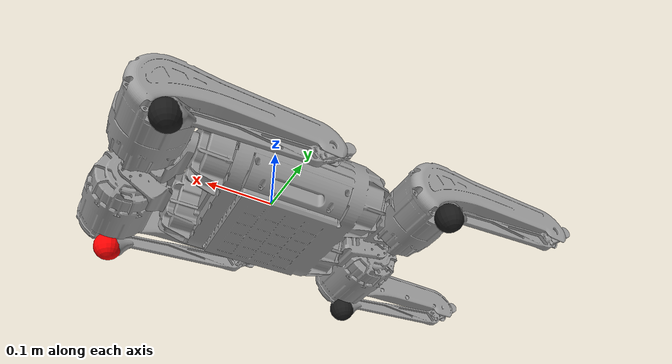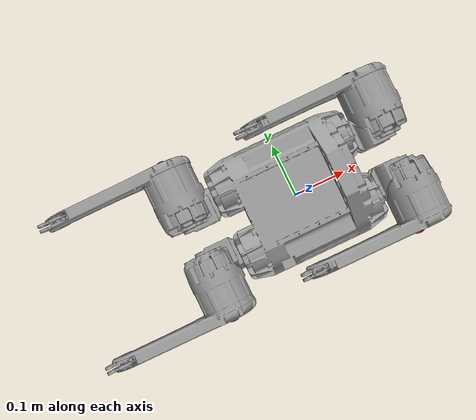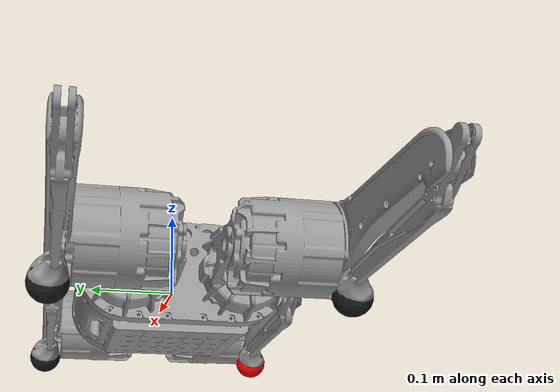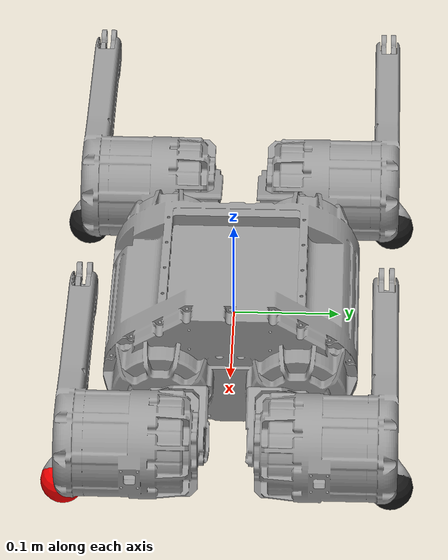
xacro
<?xml version="1.0"?>
<robot name="hb50" xmlns:xacro="http://www.ros.org/wiki/xacro">

  <!-- sim: none | mock | gazebo -->
  <xacro:arg name="sim" default="none" />
  <xacro:if value="${'$(arg sim)' not in ['none', 'mock', 'gazebo']}">
    ${xacro.fatal("sim must be none, mock or gazebo, got '$(arg sim)'")}
  </xacro:if>

  <xacro:include filename="../common/_materials.xacro" />
  <xacro:include filename="_hb50_leg_macro.xacro" />

  <!-- Root link, free-floating base -->
  <link name="body">
    <inertial>
      <mass value="7.812" />
      <inertia ixx="0.034280" ixy="0" ixz="0" iyy="0.053850" iyz="0" izz="0.073590" />
    </inertial>
    <visual>
      <geometry>
        <mesh filename="${hb50_mesh_dir}/hb50_body.stl" scale="0.001 0.001 0.001" />
      </geometry>
      <material name="silver" />
    </visual>
    <collision>
      <origin xyz="0 0 -0.002" />
      <geometry>
        <box size="0.196 0.152 0.124" />
      </geometry>
    </collision>
    <collision>
      <origin xyz="0 -0.064 0" rpy="0 1.570796 0" />
      <geometry>
        <cylinder length="0.282" radius="0.056" />
      </geometry>
    </collision>
    <collision>
      <origin xyz="0 0.064 0" rpy="0 1.570796 0" />
      <geometry>
        <cylinder length="0.282" radius="0.056" />
      </geometry>
    </collision>
    <collision>
      <origin xyz="0.09 0 0.057" />
      <geometry>
        <box size="0.048 0.128 0.048" />
      </geometry>
    </collision>
  </link>

  <!-- ================= FR (leg 0) ================= -->
  <xacro:hb50_leg
    prefix="fr"
    j0_xyz="0.1405 -0.064 0" j0_lower="-1.047198" j0_upper="1.570796"
    l0_mesh="hb50_l0f.stl" l0_mass="0.107" l0_ixx="0.000066961" l0_iyy="0.000070869" l0_izz="0.000062385"
    l0_inertial_xyz="0.021234 0.02611 -0.00004" l0_visual_rpy="3.141593 0 0"
    j1_xyz="0.06 0.0385 0" j1_rpy="0 0 -1.570796" j1_lower="-1.570796" j1_upper="1.570796"
    l1_mass="2.081" l1_inertial_xyz="0.067316 -0.013171 0.002548" l1_ixx="0.006065" l1_iyy="0.003514" l1_izz="0.007592"
    l1_visual_rpy="3.141593 0 0" l1_mesh="hb50_l1r.stl"
    l1_collision2_xyz="0.118 -0.134 0.013" l1_collision2_rpy="0.05 0 0"
    j2_xyz="0.11965 -0.22 0" j2_rpy="2.914700 0 0" j2_lower="-2.705260" j2_upper="0"
    l2_inertial_xyz="0.000982 -0.103425 0.002827" l2_visual_rpy="3.141593 0 0" l2_mesh="hb50_l2r.stl"
    l2_collision1_xyz="0 0.01 0.004" l2_collision1_rpy="1.2 0 0"
    l2_collision2_xyz="0 -0.11 0.006" l2_collision2_rpy="1.699994 0.003670 0.010561"
    jFoot_xyz="0.006 -0.22 0" foot_material="red"
  />

  <!-- ================= FL (leg 1) ================= -->
  <xacro:hb50_leg
    prefix="fl"
    j0_xyz="0.1405 0.064 0" j0_lower="-1.570796" j0_upper="1.047198"
    l0_mesh="hb50_l0f.stl" l0_mass="0.107" l0_ixx="0.000066961" l0_iyy="0.000070869" l0_izz="0.000062385"
    l0_inertial_xyz="0.021234 -0.02611 0.00004"
    j1_xyz="0.06 -0.0385 0" j1_rpy="0 0 1.570796" j1_lower="-1.570796" j1_upper="1.570796"
    l1_mass="2.081" l1_inertial_xyz="0.067316 0.013171 0.002548" l1_ixx="0.006065" l1_iyy="0.003514" l1_izz="0.007592"
    l1_visual_rpy="0 3.141593 0" l1_mesh="hb50_l1l.stl"
    l1_collision2_xyz="0.118 0.134 0.013" l1_collision2_rpy="-0.05 0 0"
    j2_xyz="0.11965 0.22 0" j2_rpy="-2.914700 0 0" j2_lower="0" j2_upper="2.705260"
    l2_inertial_xyz="0.000982 0.103425 0.002827" l2_visual_rpy="0 3.141593 0" l2_mesh="hb50_l2l.stl"
    l2_collision1_xyz="0 -0.01 0.004" l2_collision1_rpy="-1.2 0 0"
    l2_collision2_xyz="0 0.11 0.006" l2_collision2_rpy="-1.699994 0.003670 -0.010561"
    jFoot_xyz="0.006 0.22 0" foot_material="black"
  />

  <!-- ================= RL (leg 2) ================= -->
  <xacro:hb50_leg
    prefix="rl"
    j0_xyz="-0.1405 0.064 0" j0_rpy="0 0 -3.141593" j0_lower="-1.047198" j0_upper="1.570796"
    l0_mesh="hb50_l0r.stl" l0_mass="0.097" l0_ixx="0.000048192" l0_iyy="0.000050964" l0_izz="0.000058424"
    l0_inertial_xyz="0.01945 0.024417 0" l0_visual_rpy="3.141593 0 0"
    j1_xyz="0.06 0.0385 0" j1_rpy="0 0 -1.570796" j1_lower="-3.141593" j1_upper="1.570796"
    l1_mass="2.082" l1_inertial_xyz="0.067294 0.016208 0.002475" l1_ixx="0.005907" l1_iyy="0.003507" l1_izz="0.007445"
    l1_visual_rpy="0 3.141593 0" l1_mesh="hb50_l1l.stl"
    l1_collision2_xyz="0.118 0.134 0.013" l1_collision2_rpy="-0.05 0 0"
    j2_xyz="0.11965 0.22 0" j2_rpy="-2.914700 0 0" j2_lower="0" j2_upper="2.705260"
    l2_inertial_xyz="0.000982 0.103425 0.002827" l2_visual_rpy="0 3.141593 0" l2_mesh="hb50_l2l.stl"
    l2_collision1_xyz="0 -0.01 0.004" l2_collision1_rpy="-1.2 0 0"
    l2_collision2_xyz="0 0.11 0.006" l2_collision2_rpy="-1.699994 0.003670 -0.010561"
    jFoot_xyz="0.006 0.22 0" foot_material="black"
  />

  <!-- ================= RR (leg 3) ================= -->
  <xacro:hb50_leg
    prefix="rr"
    j0_xyz="-0.1405 -0.064 0" j0_rpy="0 0 -3.141593" j0_lower="-1.570796" j0_upper="1.047198"
    l0_mesh="hb50_l0r.stl" l0_mass="0.097" l0_ixx="0.000048192" l0_iyy="0.000050964" l0_izz="0.000058424"
    l0_inertial_xyz="0.01945 -0.024417 0"
    j1_xyz="0.06 -0.0385 0" j1_rpy="0 0 1.570796" j1_lower="-1.570796" j1_upper="3.141593"
    l1_mass="2.082" l1_inertial_xyz="0.067294 -0.016208 0.002475" l1_ixx="0.005907" l1_iyy="0.003507" l1_izz="0.007445"
    l1_visual_rpy="3.141593 0 0" l1_mesh="hb50_l1r.stl"
    l1_collision2_xyz="0.118 -0.134 0.013" l1_collision2_rpy="0.05 0 0"
    j2_xyz="0.11965 -0.22 0" j2_rpy="2.914700 0 0" j2_lower="-2.705260" j2_upper="0"
    l2_inertial_xyz="0.000982 -0.103425 0.002827" l2_visual_rpy="3.141593 0 0" l2_mesh="hb50_l2r.stl"
    l2_collision1_xyz="0 0.01 0.004" l2_collision1_rpy="1.2 0 0"
    l2_collision2_xyz="0 -0.11 0.006" l2_collision2_rpy="1.699994 0.003670 0.010561"
    jFoot_xyz="0.006 -0.22 0" foot_material="black"
  />

  <xacro:if value="${'$(arg sim)' != 'none'}">
    <xacro:include filename="../common/_ros2_control.xacro" />
    <xacro:ros2_control_block name="hb50" sim="$(arg sim)" />
  </xacro:if>

  <xacro:if value="${'$(arg sim)' == 'gazebo'}">
    <xacro:include filename="../common/_gazebo.xacro" />
    <xacro:gazebo_block robot="hb50" imu_xyz="0.069301 0 0" />
  </xacro:if>

</robot>

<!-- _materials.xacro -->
<robot xmlns:xacro="http://www.ros.org/wiki/xacro">

  <material name="silver">
    <color rgba="0.6 0.6 0.6 1" />
  </material>
  <material name="black">
    <color rgba="0.1 0.1 0.1 1" />
  </material>
  <material name="red">
    <color rgba="1 0 0 1" />
  </material>
  <material name="orange">
    <color rgba="1 0.41 0 1" />
  </material>

</robot>

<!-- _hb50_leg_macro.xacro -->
<robot xmlns:xacro="http://www.ros.org/wiki/xacro">

  <xacro:property name="hb50_mesh_dir" value="package://robot_models/meshes/hb50/visual" />

  <!-- One leg: j0 hip abduction, j1 hip flexion, j2 knee, fixed foot. -->
  <xacro:macro name="hb50_leg" params="
      prefix
      j0_xyz j0_rpy:='0 0 0' j0_lower j0_upper
      l0_mesh l0_mass l0_ixx l0_iyy l0_izz
      l0_inertial_xyz l0_visual_rpy:='0 0 0'
      j1_xyz j1_rpy j1_lower j1_upper
      l1_mass l1_inertial_xyz l1_ixx l1_iyy l1_izz l1_visual_rpy l1_mesh
      l1_collision2_xyz l1_collision2_rpy
      j2_xyz j2_rpy j2_lower j2_upper
      l2_inertial_xyz l2_visual_rpy l2_mesh
      l2_collision1_xyz l2_collision1_rpy
      l2_collision2_xyz l2_collision2_rpy
      jFoot_xyz foot_material
    ">

    <!-- L0 : hip abduction link -->
    <link name="${prefix}_l0">
      <inertial>
        <origin xyz="${l0_inertial_xyz}" />
        <mass value="${l0_mass}" />
        <inertia ixx="${l0_ixx}" ixy="0" ixz="0" iyy="${l0_iyy}" iyz="0" izz="${l0_izz}" />
      </inertial>
      <visual>
        <origin rpy="${l0_visual_rpy}" />
        <geometry>
          <mesh filename="${hb50_mesh_dir}/${l0_mesh}" scale="0.001 0.001 0.001" />
        </geometry>
        <material name="silver" />
      </visual>
    </link>

    <!-- L1 : upper leg -->
    <link name="${prefix}_l1">
      <inertial>
        <origin xyz="${l1_inertial_xyz}" />
        <mass value="${l1_mass}" />
        <inertia ixx="${l1_ixx}" ixy="0" ixz="0" iyy="${l1_iyy}" iyz="0" izz="${l1_izz}" />
      </inertial>
      <visual>
        <origin rpy="${l1_visual_rpy}" />
        <geometry>
          <mesh filename="${hb50_mesh_dir}/${l1_mesh}" scale="0.001 0.001 0.001" />
        </geometry>
        <material name="silver" />
      </visual>
      <collision>
        <origin xyz="0.066 0 0" rpy="0 1.570796 0" />
        <geometry>
          <cylinder length="0.132" radius="0.051" />
        </geometry>
      </collision>
      <collision>
        <origin xyz="${l1_collision2_xyz}" rpy="${l1_collision2_rpy}" />
        <geometry>
          <box size="0.028 0.22 0.052" />
        </geometry>
      </collision>
    </link>

    <!-- L2 : lower leg / shin -->
    <link name="${prefix}_l2">
      <inertial>
        <origin xyz="${l2_inertial_xyz}" />
        <mass value="0.141" />
        <inertia ixx="0.001234" ixy="0" ixz="0" iyy="0.000021630" iyz="0" izz="0.001225" />
      </inertial>
      <visual>
        <origin rpy="${l2_visual_rpy}" />
        <geometry>
          <mesh filename="${hb50_mesh_dir}/${l2_mesh}" scale="0.001 0.001 0.001" />
        </geometry>
        <material name="silver" />
      </visual>
      <collision>
        <origin xyz="${l2_collision1_xyz}" rpy="${l2_collision1_rpy}" />
        <geometry>
          <cylinder length="0.06" radius="0.012" />
        </geometry>
      </collision>
      <collision>
        <origin xyz="${l2_collision2_xyz}" rpy="${l2_collision2_rpy}" />
        <geometry>
          <cylinder length="0.196" radius="0.016" />
        </geometry>
      </collision>
    </link>

    <!-- Foot : massless -->
    <link name="${prefix}_foot">
      <visual>
        <geometry>
          <sphere radius="0.021" />
        </geometry>
        <material name="${foot_material}" />
      </visual>
      <collision>
        <geometry>
          <sphere radius="0.021" />
        </geometry>
      </collision>
    </link>

    <!-- Joints -->
    <joint name="${prefix}_j0" type="revolute">
      <parent link="body" />
      <child link="${prefix}_l0" />
      <origin xyz="${j0_xyz}" rpy="${j0_rpy}" />
      <axis xyz="1 0 0" />
      <limit effort="24.0" lower="${j0_lower}" upper="${j0_upper}" velocity="20.0" />
      <dynamics damping="0.1" friction="0.48" />
    </joint>

    <joint name="${prefix}_j1" type="revolute">
      <parent link="${prefix}_l0" />
      <child link="${prefix}_l1" />
      <origin xyz="${j1_xyz}" rpy="${j1_rpy}" />
      <axis xyz="1 0 0" />
      <limit effort="24.0" lower="${j1_lower}" upper="${j1_upper}" velocity="20.0" />
      <dynamics damping="0.1" friction="0.48" />
    </joint>

    <joint name="${prefix}_j2" type="revolute">
      <parent link="${prefix}_l1" />
      <child link="${prefix}_l2" />
      <origin xyz="${j2_xyz}" rpy="${j2_rpy}" />
      <axis xyz="1 0 0" />
      <limit effort="24.0" lower="${j2_lower}" upper="${j2_upper}" velocity="20.0" />
      <dynamics damping="0.1" friction="0.48" />
    </joint>

    <joint name="${prefix}_jFoot" type="fixed">
      <parent link="${prefix}_l2" />
      <child link="${prefix}_foot" />
      <origin xyz="${jFoot_xyz}" />
    </joint>

  </xacro:macro>
</robot>
